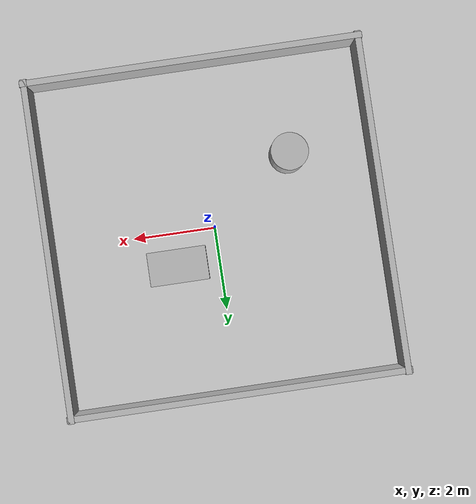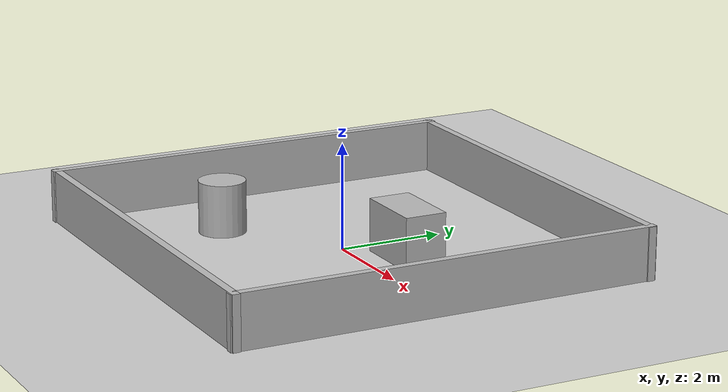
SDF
<?xml version="1.0" ?>
<sdf version="1.9">
  <world name="nav2_world">
    <physics name="1ms" type="ignored">
      <max_step_size>0.01</max_step_size>
      <real_time_factor>1.0</real_time_factor>
    </physics>
    <plugin filename="gz-sim-physics-system" name="gz::sim::systems::Physics"/>
    <plugin filename="gz-sim-user-commands-system" name="gz::sim::systems::UserCommands"/>
    <plugin filename="gz-sim-scene-broadcaster-system" name="gz::sim::systems::SceneBroadcaster"/>
    <plugin filename="gz-sim-sensors-system" name="gz::sim::systems::Sensors">
      <render_engine>ogre2</render_engine>
    </plugin>

    <light type="directional" name="sun">
      <pose>0 0 10 0 0 0</pose>
      <diffuse>0.8 0.8 0.8 1</diffuse>
      <specular>0.2 0.2 0.2 1</specular>
      <direction>-0.5 0.1 -0.9</direction>
    </light>

    <model name="ground_plane">
      <static>true</static>
      <link name="link">
        <collision name="collision"><geometry><plane><normal>0 0 1</normal><size>20 20</size></plane></geometry></collision>
        <visual name="visual"><geometry><plane><normal>0 0 1</normal><size>20 20</size></plane></geometry></visual>
      </link>
    </model>

    <!-- A bounded, asymmetric course makes scan matching and navigation easy to verify. -->
    <model name="walls"><static>true</static><link name="link">
      <collision name="north"><pose>0 4 0.5 0 0 0</pose><geometry><box><size>8.2 0.15 1.0</size></box></geometry></collision>
      <collision name="south"><pose>0 -4 0.5 0 0 0</pose><geometry><box><size>8.2 0.15 1.0</size></box></geometry></collision>
      <collision name="east"><pose>4 0 0.5 0 0 0</pose><geometry><box><size>0.15 8.2 1.0</size></box></geometry></collision>
      <collision name="west"><pose>-4 0 0.5 0 0 0</pose><geometry><box><size>0.15 8.2 1.0</size></box></geometry></collision>
      <visual name="north_v"><pose>0 4 0.5 0 0 0</pose><geometry><box><size>8.2 0.15 1.0</size></box></geometry></visual>
      <visual name="south_v"><pose>0 -4 0.5 0 0 0</pose><geometry><box><size>8.2 0.15 1.0</size></box></geometry></visual>
      <visual name="east_v"><pose>4 0 0.5 0 0 0</pose><geometry><box><size>0.15 8.2 1.0</size></box></geometry></visual>
      <visual name="west_v"><pose>-4 0 0.5 0 0 0</pose><geometry><box><size>0.15 8.2 1.0</size></box></geometry></visual>
    </link></model>
    <model name="center_obstacle"><static>true</static><pose>1.0 0.8 0.5 0 0 0</pose><link name="link">
      <collision name="collision"><geometry><box><size>1.4 0.8 1.0</size></box></geometry></collision>
      <visual name="visual"><geometry><box><size>1.4 0.8 1.0</size></box></geometry></visual>
    </link></model>
    <model name="corner_obstacle"><static>true</static><pose>-2.0 -1.5 0.5 0 0 0</pose><link name="link">
      <collision name="collision"><geometry><cylinder><radius>0.45</radius><length>1.0</length></cylinder></geometry></collision>
      <visual name="visual"><geometry><cylinder><radius>0.45</radius><length>1.0</length></cylinder></geometry></visual>
    </link></model>
  </world>
</sdf>
